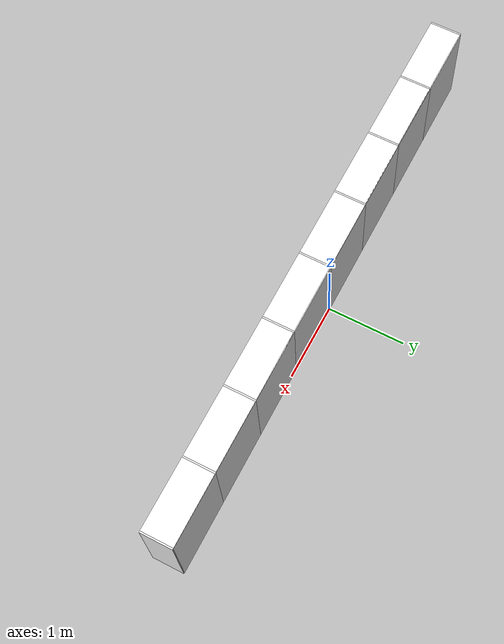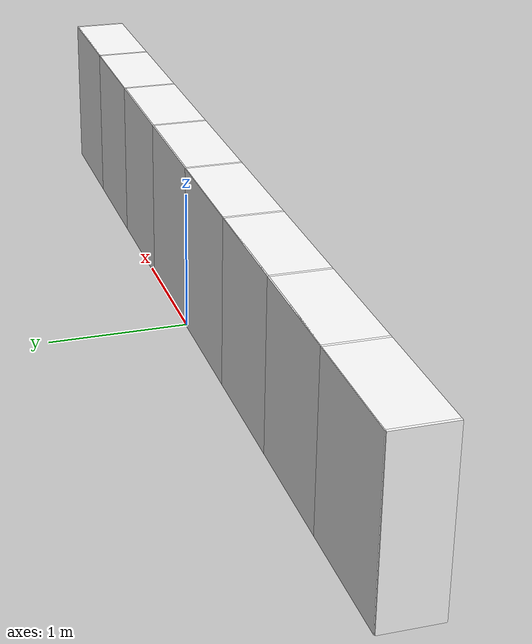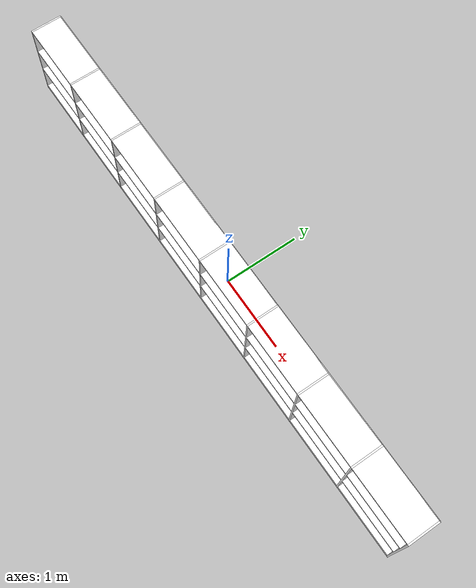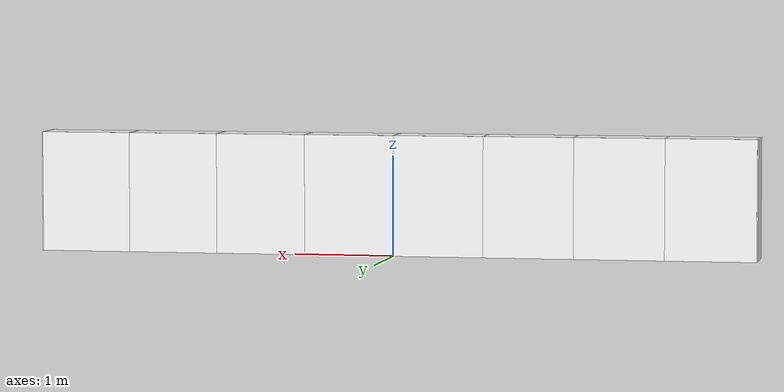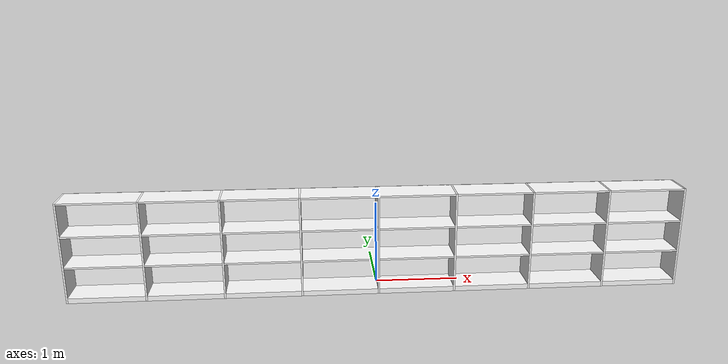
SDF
<?xml version="1.0" ?>
<sdf version="1.10">
  <model name="parallel_bookshelf8">
    <static>true</static>

    <!-- First Bookshelf -->
    <include>
      <uri>model://Bookshelf</uri>
      <name>bookshelf_1</name>
      <pose>-3.15 0 0 0 0 0</pose>
    </include>

    <!-- Second Bookshelf -->
    <include>
      <uri>model://Bookshelf</uri>
      <name>bookshelf_2</name>
      <pose>-2.25 0 0 0 0 0</pose>
    </include>

    <!-- Third Bookshelf -->
    <include>
      <uri>model://Bookshelf</uri>
      <name>bookshelf_3</name>
      <pose>-1.35 0 0 0 0 0</pose>
    </include>

    <!-- Fourth Bookshelf -->
    <include>
      <uri>model://Bookshelf</uri>
      <name>bookshelf_4</name>
      <pose>-0.45 0 0 0 0 0</pose>
    </include>

    <!-- Fifth Bookshelf -->
    <include>
      <uri>model://Bookshelf</uri>
      <name>bookshelf_5</name>
      <pose>0.45 0 0 0 0 0</pose>
    </include>

    <!-- Sixth Bookshelf -->
    <include>
      <uri>model://Bookshelf</uri>
      <name>bookshelf_6</name>
      <pose>1.35 0 0 0 0 0</pose>
    </include>

    <!-- Seventh Bookshelf -->
    <include>
      <uri>model://Bookshelf</uri>
      <name>bookshelf_7</name>
      <pose>2.25 0 0 0 0 0</pose>
    </include>

    <!-- Eighth Bookshelf -->
    <include>
      <uri>model://Bookshelf</uri>
      <name>bookshelf_8</name>
      <pose>3.15 0 0 0 0 0</pose>
    </include>

  </model>
</sdf>

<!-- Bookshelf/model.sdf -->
<sdf version="1.10">
  <model name="Bookshelf">
    <static>true</static>
    <link name="link">
      <inertial>
        <mass>1.0</mass>
      </inertial>
      <collision name="back">
        <pose>0 0.005 0.6 0 0 0</pose>
        <geometry>
          <box>
            <size>0.9 0.01 1.2</size>
          </box>
        </geometry>
      </collision>
      <visual name="visual1">
        <pose>0 0.005 0.6 0 0 0</pose>
        <geometry>
          <box>
            <size>0.9 0.01 1.2</size>
          </box>
        </geometry>
        <material>
          <ambient>1 1 1 1</ambient>
          <diffuse>1 1 1 1</diffuse>
          <specular>0.1 0.1 0.1 1</specular>
          <pbr>
            <metal>
              <albedo_map>/home/netlab/littletank/model/zyz_material/bookshelf_diffuse.jpg</albedo_map>
            </metal>
          </pbr>
        </material>
      </visual>
      <collision name="left_side">
        <pose>0.45 -0.195 0.6 0 0 0</pose>
        <geometry>
          <box>
            <size>0.02 0.4 1.2</size>
          </box>
        </geometry>
      </collision>
      <visual name="visual2">
        <pose>0.45 -0.195 0.6 0 0 0</pose>
        <geometry>
          <box>
            <size>0.02 0.4 1.2</size>
          </box>
        </geometry>
        <material>
          <ambient>1 1 1 1</ambient>
          <diffuse>1 1 1 1</diffuse>
          <specular>0.1 0.1 0.1 1</specular>
          <pbr>
            <metal>
              <albedo_map>/home/netlab/littletank/model/zyz_material/bookshelf_diffuse.jpg</albedo_map>
            </metal>
          </pbr>
        </material>
      </visual>
      <collision name="right_side">
        <pose>-0.45 -0.195 0.6 0 0 0</pose>
        <geometry>
          <box>
            <size>0.02 0.4 1.2</size>
          </box>
        </geometry>
      </collision>
      <visual name="visual3">
        <pose>-0.45 -0.195 0.6 0 0 0</pose>
        <geometry>
          <box>
            <size>0.02 0.4 1.2</size>
          </box>
        </geometry>
        <material>
          <ambient>1 1 1 1</ambient>
          <diffuse>1 1 1 1</diffuse>
          <specular>0.1 0.1 0.1 1</specular>
          <pbr>
            <metal>
              <albedo_map>/home/netlab/littletank/model/zyz_material/bookshelf_diffuse.jpg</albedo_map>
            </metal>
          </pbr>
        </material>
      </visual>
      <collision name="bottom">
        <pose>0 -0.195 0.03 0 0 0</pose>
        <geometry>
          <box>
            <size>0.88 0.4 0.06</size>
          </box>
        </geometry>
      </collision>
      <visual name="visual4">
        <pose>0 -0.195 0.03 0 0 0</pose>
        <geometry>
          <box>
            <size>0.88 0.4 0.06</size>
          </box>
        </geometry>
        <material>
          <ambient>1 1 1 1</ambient>
          <diffuse>1 1 1 1</diffuse>
          <specular>0.1 0.1 0.1 1</specular>
          <pbr>
            <metal>
              <albedo_map>/home/netlab/littletank/model/zyz_material/bookshelf_diffuse.jpg</albedo_map>
            </metal>
          </pbr>
        </material>
      </visual>
      <collision name="top">
        <pose>0 -0.195 1.19 0 0 0</pose>
        <geometry>
          <box>
            <size>0.88 0.4 0.02</size>
          </box>
        </geometry>
      </collision>
      <visual name="visual5">
        <pose>0 -0.195 1.19 0 0 0</pose>
        <geometry>
          <box>
            <size>0.88 0.4 0.02</size>
          </box>
        </geometry>
        <material>
          <ambient>1 1 1 1</ambient>
          <diffuse>1 1 1 1</diffuse>
          <specular>0.1 0.1 0.1 1</specular>
          <pbr>
            <metal>
              <albedo_map>/home/netlab/littletank/model/zyz_material/bookshelf_diffuse.jpg</albedo_map>
            </metal>
          </pbr>
        </material>
      </visual>
      <collision name="low_shelf">
        <pose>0 -0.195 0.43 0 0 0</pose>
        <geometry>
          <box>
            <size>0.88 0.4 0.02</size>
          </box>
        </geometry>
      </collision>
      <visual name="visual6">
        <pose>0 -0.195 0.43 0 0 0</pose>
        <geometry>
          <box>
            <size>0.88 0.4 0.02</size>
          </box>
        </geometry>
        <material>
          <ambient>1 1 1 1</ambient>
          <diffuse>1 1 1 1</diffuse>
          <specular>0.1 0.1 0.1 1</specular>
          <pbr>
            <metal>
              <albedo_map>/home/netlab/littletank/model/zyz_material/bookshelf_diffuse.jpg</albedo_map>
            </metal>
          </pbr>
        </material>
      </visual>
      <collision name="high_shelf">
        <pose>0 -0.195 0.8 0 0 0</pose>
        <geometry>
          <box>
            <size>0.88 0.4 0.02</size>
          </box>
        </geometry>
      </collision>
      <visual name="visual7">
        <pose>0 -0.195 0.8 0 0 0</pose>
        <geometry>
          <box>
            <size>0.88 0.4 0.02</size>
          </box>
        </geometry>
        <material>
          <ambient>1 1 1 1</ambient>
          <diffuse>1 1 1 1</diffuse>
          <specular>0.1 0.1 0.1 1</specular>
          <pbr>
            <metal>
              <albedo_map>/home/netlab/littletank/model/zyz_material/bookshelf_diffuse.jpg</albedo_map>
            </metal>
          </pbr>
        </material>
      </visual>
    </link>
  </model>
</sdf>
